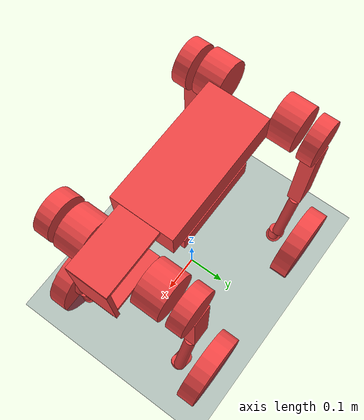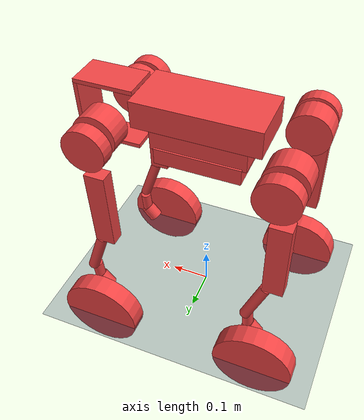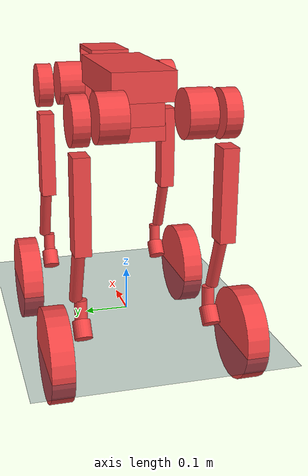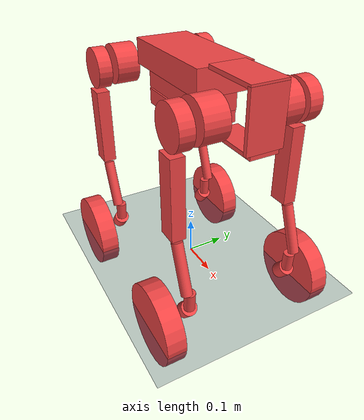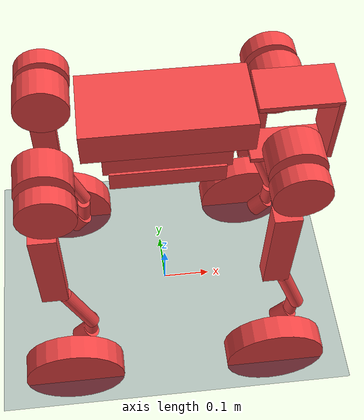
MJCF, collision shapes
<mujoco model="black scene">
  <include file="blackW_description.xml"/>

  <statistic center="0 0 0.1" extent="0.8"/>

  <visual>
    <headlight diffuse="0.6 0.6 0.6" ambient="0.3 0.3 0.3" specular="0 0 0"/>
    <rgba haze="0.15 0.25 0.35 1"/>
    <global azimuth="120" elevation="-20"/>
  </visual>

  <asset>
    <texture type="skybox" builtin="gradient" rgb1="0.3 0.5 0.7" rgb2="0 0 0" width="512" height="3072"/>
    <texture type="2d" name="groundplane" builtin="checker" mark="edge" rgb1="0.2 0.3 0.4" rgb2="0.1 0.2 0.3"
      markrgb="0.8 0.8 0.8" width="300" height="300"/>
    <material name="groundplane" texture="groundplane" texuniform="true" texrepeat="5 5" reflectance="0.2"/>
  </asset>

  <worldbody>
    <light pos="0 0 1.5" dir="0 0 -1" directional="true"/>
    <geom name="floor" size="0 0 0.05" type="plane" material="groundplane"/>
  </worldbody>
</mujoco>

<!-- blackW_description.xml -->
<mujoco model="blackW">
  <compiler angle="radian" meshdir="assets" />
  <option timestep="0.002" gravity="0 0 -9.81" cone="elliptic" impratio="100" />

  <default>
    <joint damping="0.1" armature="0.01" frictionloss="0.2" />
  </default>
  <asset>
    <mesh name="trunk" file="trunk.STL" />
    <mesh name="d435" file="d435.stl" />
    <mesh name="FL_hip" file="FL_hip.STL" />
    <mesh name="FL_thigh" file="FL_thigh.STL" />
    <mesh name="FL_calf" file="FL_calf.STL" />
    <mesh name="FL_foot" file="FL_foot.STL" />
    <mesh name="FR_hip" file="FR_hip.STL" />
    <mesh name="FR_thigh" file="FR_thigh.STL" />
    <mesh name="FR_calf" file="FR_calf.STL" />
    <mesh name="FR_foot" file="FR_foot.STL" />
    <mesh name="RR_hip" file="RR_hip.STL" />
    <mesh name="RR_thigh" file="RR_thigh.STL" />
    <mesh name="RR_calf" file="RR_calf.STL" />
    <mesh name="RR_foot" file="RR_foot.STL" />
    <mesh name="RL_hip" file="RL_hip.STL" />
    <mesh name="RL_thigh" file="RL_thigh.STL" />
    <mesh name="RL_calf" file="RL_calf.STL" />
    <mesh name="RL_foot" file="RL_foot.STL" />
    <material name="trunk_mat" rgba="0.749 0.749 0.749 1" specular="0" />
    <material name="imu_link_mat" rgba="0.8 0 0 1" specular="0" />
    <material name="d435_link_mat" rgba="0.149 0.149 0.149 1" specular="0" />
    <material name="FL_hip_mat" rgba="0.749 0.749 0.749 1" specular="0" />
    <material name="FL_thigh_mat" rgba="0.749 0.749 0.749 1" specular="0" />
    <material name="FL_calf_mat" rgba="0.749 0.749 0.749 1" specular="0" />
    <material name="FL_foot_mat" rgba="0.8667 0.9059 1 1" specular="0" />
    <material name="FR_hip_mat" rgba="0.749 0.749 0.749 1" specular="0" />
    <material name="FR_thigh_mat" rgba="0.749 0.749 0.749 1" specular="0" />
    <material name="FR_calf_mat" rgba="0.749 0.749 0.749 1" specular="0" />
    <material name="FR_foot_mat" rgba="0.8667 0.9059 1 1" specular="0" />
    <material name="RR_hip_mat" rgba="0.749 0.749 0.749 1" specular="0" />
    <material name="RR_thigh_mat" rgba="0.749 0.749 0.749 1" specular="0" />
    <material name="RR_calf_mat" rgba="0.749 0.749 0.749 1" specular="0" />
    <material name="RR_foot_mat" rgba="0.8667 0.9059 1 1" specular="0" />
    <material name="RL_hip_mat" rgba="0.749 0.749 0.749 1" specular="0" />
    <material name="RL_thigh_mat" rgba="0.749 0.749 0.749 1" specular="0" />
    <material name="RL_calf_mat" rgba="0.749 0.749 0.749 1" specular="0" />
    <material name="RL_foot_mat" rgba="0.8667 0.9059 1 1" specular="0" />
  </asset>

  <contact>
    <exclude body1="trunk" body2="FR_thigh" />
    <exclude body1="trunk" body2="FL_thigh" />
    <exclude body1="trunk" body2="RR_thigh" />
    <exclude body1="trunk" body2="RL_thigh" />
    <exclude body1="trunk" body2="FR_hip" />
    <exclude body1="trunk" body2="FL_hip" />
    <exclude body1="trunk" body2="RR_hip" />
    <exclude body1="trunk" body2="RL_hip" />
    <exclude body1="FR_foot" body2="FR_thigh" />
    <exclude body1="FL_foot" body2="FL_thigh" />
    <exclude body1="RR_foot" body2="RR_thigh" />
    <exclude body1="RL_foot" body2="RL_thigh" />
    <exclude body1="FR_foot" body2="FR_calf" />
    <exclude body1="FL_foot" body2="FL_calf" />
    <exclude body1="RR_foot" body2="RR_calf" />
    <exclude body1="RL_foot" body2="RL_calf" />
  </contact>

  <worldbody>
    <body name="trunk" pos="0 0 0.58">
      <freejoint/>
      <inertial pos="-0.012143 -0.0000494 -0.0734402" mass="5.7659525" fullinertia="0.0093888 0.0077112 0.012879 -0.0000026 0.0000017 -0.0000276"/>
      <geom pos="0 0 0" group="1" contype="0" conaffinity="0" material="trunk_mat" type="mesh" mesh="trunk" />
      <geom pos="0 0 -0.02" rgba="0.9373 0.2667 0.2667 1" group="3" contype="1" conaffinity="1" type="box" size="0.15 0.07 0.0325" />
      <geom pos="0 0 -0.08" rgba="0.9373 0.2667 0.2667 1" group="3" contype="1" conaffinity="1" type="box" size="0.115 0.055 0.03" />
      <geom pos="0 0 -0.125" rgba="0.9373 0.2667 0.2667 1" group="3" contype="1" conaffinity="1" type="box" size="0.105 0.06 0.02" />
      <geom pos="0.225 0 -0.13" rgba="0.9373 0.2667 0.2667 1" group="3" contype="1" conaffinity="1" type="box" size="0.0725 0.035 0.005" />
      <geom pos="0.225 0 0.015" rgba="0.9373 0.2667 0.2667 1" group="3" contype="1" conaffinity="1" type="box" size="0.0725 0.045 0.005" />
      <geom pos="0.293 0 -0.055" rgba="0.9373 0.2667 0.2667 1" group="3" contype="1" conaffinity="1" type="box" size="0.005 0.045 0.07" />
      <body name="imu_link" pos="0 0 0">
        <inertial pos="0 0 0" mass="0.001" diaginertia="0.0001 0.0001 0.0001"/>
        <geom pos="0 0 0" group="1" contype="0" conaffinity="0" material="imu_link_mat" type="box" size="0.0005 0.0005 0.0005" />
        <site name="imu" pos="0 0 0" quat="1 0 0 0" />
      </body>
      <body name="d435_link" pos="0.225 0 0.028">
        <inertial pos="0 0 -0.0125" mass="0.072" diaginertia="0.00002 0.00006 0.00006"/>
        <geom pos="0.07 0 -0.08" quat="0.3155095 0.6328142 0.6328142 0.3155095" group="1" contype="0" conaffinity="0" material="d435_link_mat" type="mesh" mesh="d435" />
      </body>
      <body name="FL_hip" pos="0.1566 0.060001 -0.06425">
        <joint name="FL_hip_joint" type="hinge" axis="1 0 0" limited="true" range="-0.5 0.5"/>
        <inertial pos="0.0513796 0.0147843 0.0000566" mass="0.6055878" fullinertia="0.0003742 0.0006493 0.0003415 -0.0000088 0.000001 -0.0000001"/>
        <geom pos="0 0 0" group="1" contype="0" conaffinity="0" material="FL_hip_mat" type="mesh" mesh="FL_hip" />
        <geom pos="0.058 0.03 0" quat="0.7071068 0.7071068 0 0" rgba="0.9373 0.2667 0.2667 1" group="3" contype="1" conaffinity="1" type="cylinder" size="0.052 0.03" />
        <body name="FL_thigh" pos="0.056 0.0336 0" quat="0.7071055 0 0 0.7071081">
          <joint name="FL_thigh_joint" type="hinge" axis="1 0 0" limited="true" range="-1.4 3"/>
          <inertial pos="0.0414485 0.004453 -0.0219464" mass="0.9116849" fullinertia="0.0018577 0.0013983 0.0005179 0 -0.0000002 0.0000051"/>
          <geom pos="0 0 0" group="1" contype="0" conaffinity="0" material="FL_thigh_mat" type="mesh" mesh="FL_thigh" />
          <geom pos="0.06 0.015 -0.17" rgba="0.9373 0.2667 0.2667 1" group="3" contype="1" conaffinity="1" type="box" size="0.0175 0.025 0.1025" />
          <geom pos="0.06 0 -0.003" quat="0.7071068 0 0.7071068 0" rgba="0.9373 0.2667 0.2667 1" group="3" contype="1" conaffinity="1" type="cylinder" size="0.052 0.0175" />
          <body name="FL_calf" pos="0.0618 0 -0.25">
            <joint name="FL_calf_joint" type="hinge" axis="1 0 0" limited="true" range="-2.5 -0.85"/>
            <inertial pos="0.0040653 -0.0170671 -0.1908967" mass="0.6311814" fullinertia="0.0017739 0.0014952 0.000293 -0.0000007 0.0000012 -0.0000722"/>
            <geom pos="0 0 0" group="1" contype="0" conaffinity="0" material="FL_calf_mat" type="mesh" mesh="FL_calf" />
            <geom pos="0 -0.025 -0.09" quat="0.9843036 -0.1764835 0 0" rgba="0.9373 0.2667 0.2667 1" group="3" contype="1" conaffinity="1" type="cylinder" size="0.014 0.065" />
            <geom pos="-0.01 -0.042 -0.178" quat="0.9993847 0.0350739 0 0" rgba="0.9373 0.2667 0.2667 1" group="3" contype="1" conaffinity="1" type="cylinder" size="0.014 0.025" />
            <geom pos="-0.01 -0.028 -0.218" quat="0.9396926 0.3420201 0 0" rgba="0.9373 0.2667 0.2667 1" group="3" contype="1" conaffinity="1" type="cylinder" size="0.02 0.02" />
            <body name="FL_foot" pos="0.02635 0 -0.25253" quat="-0.0000037 1 0 0">
              <joint name="FL_wheel_joint" type="hinge" axis="1 0 0" limited="false"/>
              <inertial pos="0.0291381 0.0000012 -0.0000002" mass="1.4862602" diaginertia="0.0069491 0.0036386 0.0036388"/>
              <geom pos="0 0 0" group="1" contype="0" conaffinity="0" material="FL_foot_mat" type="mesh" mesh="FL_foot" />
              <geom pos="0.028 0 0" quat="0.7071068 0 0.7071068 0" rgba="0.9373 0.2667 0.2667 1" group="3" contype="1" conaffinity="1" type="cylinder" size="0.103 0.0245" />
            </body>
          </body>
        </body>
      </body>
      <body name="FR_hip" pos="0.1566 -0.059999 -0.06425">
        <joint name="FR_hip_joint" type="hinge" axis="1 0 0" limited="true" range="-0.5 0.5"/>
        <inertial pos="0.0513796 -0.0147843 -0.0000566" mass="0.6055878" fullinertia="0.0003742 0.0006493 0.0003415 0.0000088 -0.000001 -0.0000001"/>
        <geom pos="0 0 0" group="1" contype="0" conaffinity="0" material="FR_hip_mat" type="mesh" mesh="FR_hip" />
        <geom pos="0.058 -0.03 0" quat="0.7071068 0.7071068 0 0" rgba="0.9373 0.2667 0.2667 1" group="3" contype="1" conaffinity="1" type="cylinder" size="0.052 0.03" />
        <body name="FR_thigh" pos="0.056 -0.0336 0" quat="0.7071055 0 0 -0.7071081">
          <joint name="FR_thigh_joint" type="hinge" axis="1 0 0" limited="true" range="-3 1.4"/>
          <inertial pos="0.0415203 -0.0043781 -0.0220242" mass="0.9149128" fullinertia="0.0018577 0.0013991 0.0005172 -0.0000001 -0.0000002 -0.0000031"/>
          <geom pos="0 0 0" group="1" contype="0" conaffinity="0" material="FR_thigh_mat" type="mesh" mesh="FR_thigh" />
          <geom pos="0.06 -0.015 -0.17" rgba="0.9373 0.2667 0.2667 1" group="3" contype="1" conaffinity="1" type="box" size="0.0175 0.025 0.1025" />
          <geom pos="0.06 0 -0.003" quat="0.7071068 0 0.7071068 0" rgba="0.9373 0.2667 0.2667 1" group="3" contype="1" conaffinity="1" type="cylinder" size="0.052 0.0175" />
          <body name="FR_calf" pos="0.0618 0 -0.25">
            <joint name="FR_calf_joint" type="hinge" axis="1 0 0" limited="true" range="0.85 2.5"/>
            <inertial pos="0.0040653 0.0170625 -0.1908923" mass="0.6311813" fullinertia="0.0017739 0.0014951 0.000293 0.0000007 0.0000011 0.0000722"/>
            <geom pos="0 0 0" group="1" contype="0" conaffinity="0" material="FR_calf_mat" type="mesh" mesh="FR_calf" />
            <geom pos="0 0.025 -0.09" quat="0.9843036 0.1764835 0 0" rgba="0.9373 0.2667 0.2667 1" group="3" contype="1" conaffinity="1" type="cylinder" size="0.014 0.065" />
            <geom pos="-0.01 0.042 -0.178" quat="0.9993847 -0.0350739 0 0" rgba="0.9373 0.2667 0.2667 1" group="3" contype="1" conaffinity="1" type="cylinder" size="0.014 0.025" />
            <geom pos="-0.01 0.028 -0.218" quat="0.9396926 -0.3420201 0 0" rgba="0.9373 0.2667 0.2667 1" group="3" contype="1" conaffinity="1" type="cylinder" size="0.02 0.02" />
            <body name="FR_foot" pos="0.02635 0 -0.25253">
              <joint name="FR_wheel_joint" type="hinge" axis="1 0 0" limited="false"/>
              <inertial pos="0.0291381 -0.0000001 -0.0000012" mass="1.4862603" diaginertia="0.0069491 0.0036388 0.0036386"/>
              <geom pos="0 0 0" group="1" contype="0" conaffinity="0" material="FR_foot_mat" type="mesh" mesh="FR_foot" />
              <geom pos="0.028 0 0" quat="0.7071068 0 0.7071068 0" rgba="0.9373 0.2667 0.2667 1" group="3" contype="1" conaffinity="1" type="cylinder" size="0.103 0.0245" />
            </body>
          </body>
        </body>
      </body>
      <body name="RR_hip" pos="-0.1566 -0.059999 -0.06425" quat="-0.0000037 0 0 -1">
        <joint name="RR_hip_joint" type="hinge" axis="1 0 0" limited="true" range="-0.5 0.5"/>
        <inertial pos="0.0513796 0.0147843 0.0000566" mass="0.6055878" fullinertia="0.0003742 0.0006493 0.0003415 -0.0000088 0.000001 -0.0000001"/>
        <geom pos="0 0 0" group="1" contype="0" conaffinity="0" material="RR_hip_mat" type="mesh" mesh="RR_hip" />
        <geom pos="0.058 0.03 0" quat="0.7071068 0.7071068 0 0" rgba="0.9373 0.2667 0.2667 1" group="3" contype="1" conaffinity="1" type="cylinder" size="0.052 0.03" />
        <body name="RR_thigh" pos="0.056 0.0336 0" quat="0.7071055 0 0 0.7071081">
          <joint name="RR_thigh_joint" type="hinge" axis="1 0 0" limited="true" range="-3 1.4"/>
          <inertial pos="0.0415203 -0.0043781 -0.0220242" mass="0.9149128" fullinertia="0.0018577 0.0013991 0.0005172 -0.0000001 -0.0000002 -0.0000031"/>
          <geom pos="0 0 0" group="1" contype="0" conaffinity="0" material="RR_thigh_mat" type="mesh" mesh="RR_thigh" />
          <geom pos="0.06 -0.015 -0.17" rgba="0.9373 0.2667 0.2667 1" group="3" contype="1" conaffinity="1" type="box" size="0.0175 0.025 0.1025" />
          <geom pos="0.06 0 -0.003" quat="0.7071068 0 0.7071068 0" rgba="0.9373 0.2667 0.2667 1" group="3" contype="1" conaffinity="1" type="cylinder" size="0.052 0.0175" />
          <body name="RR_calf" pos="0.0618 0 -0.25">
            <joint name="RR_calf_joint" type="hinge" axis="1 0 0" limited="true" range="0.85 2.5"/>
            <inertial pos="0.0040653 0.0170625 -0.1908923" mass="0.6311815" fullinertia="0.0017739 0.0014951 0.000293 0.0000007 0.0000011 0.0000722"/>
            <geom pos="0 0 0" group="1" contype="0" conaffinity="0" material="RR_calf_mat" type="mesh" mesh="RR_calf" />
            <geom pos="0 0.025 -0.09" quat="0.9843036 0.1764835 0 0" rgba="0.9373 0.2667 0.2667 1" group="3" contype="1" conaffinity="1" type="cylinder" size="0.014 0.065" />
            <geom pos="-0.01 0.042 -0.178" quat="0.9993847 -0.0350739 0 0" rgba="0.9373 0.2667 0.2667 1" group="3" contype="1" conaffinity="1" type="cylinder" size="0.014 0.025" />
            <geom pos="-0.01 0.028 -0.218" quat="0.9396926 -0.3420201 0 0" rgba="0.9373 0.2667 0.2667 1" group="3" contype="1" conaffinity="1" type="cylinder" size="0.02 0.02" />
            <body name="RR_foot" pos="0.02635 0 -0.25253">
              <joint name="RR_wheel_joint" type="hinge" axis="1 0 0" limited="false"/>
              <inertial pos="0.0291381 0.0000011 0.0000005" mass="1.4862602" fullinertia="0.0069491 0.0036387 0.0036387 0 0 -0.0000001"/>
              <geom pos="0 0 0" group="1" contype="0" conaffinity="0" material="RR_foot_mat" type="mesh" mesh="RR_foot" />
              <geom pos="0.028 0 0" quat="0.7071068 0 0.7071068 0" rgba="0.9373 0.2667 0.2667 1" group="3" contype="1" conaffinity="1" type="cylinder" size="0.103 0.0245" />
            </body>
          </body>
        </body>
      </body>
      <body name="RL_hip" pos="-0.1566 0.060001 -0.06425" quat="-0.0000037 0 0 -1">
        <joint name="RL_hip_joint" type="hinge" axis="1 0 0" limited="true" range="-0.5 0.5"/>
        <inertial pos="0.0513796 -0.0147843 -0.0000566" mass="0.6055878" fullinertia="0.0003742 0.0006493 0.0003415 0.0000088 -0.000001 -0.0000001"/>
        <geom pos="0 0 0" group="1" contype="0" conaffinity="0" material="RL_hip_mat" type="mesh" mesh="RL_hip" />
        <geom pos="0.058 -0.03 0" quat="0.7071068 0.7071068 0 0" rgba="0.9373 0.2667 0.2667 1" group="3" contype="1" conaffinity="1" type="cylinder" size="0.052 0.03" />
        <body name="RL_thigh" pos="0.056 -0.0336 0" quat="0.7071055 0 0 -0.7071081">
          <joint name="RL_thigh_joint" type="hinge" axis="1 0 0" limited="true" range="-1.4 3"/>
          <inertial pos="0.0414485 0.0044527 -0.0219466" mass="0.9116849" fullinertia="0.0018577 0.0013983 0.0005179 0 -0.0000002 0.0000051"/>
          <geom pos="0 0 0" group="1" contype="0" conaffinity="0" material="RL_thigh_mat" type="mesh" mesh="RL_thigh" />
          <geom pos="0.06 0.015 -0.17" rgba="0.9373 0.2667 0.2667 1" group="3" contype="1" conaffinity="1" type="box" size="0.0175 0.025 0.1025" />
          <geom pos="0.06 0 -0.003" quat="0.7071068 0 0.7071068 0" rgba="0.9373 0.2667 0.2667 1" group="3" contype="1" conaffinity="1" type="cylinder" size="0.052 0.0175" />
          <body name="RL_calf" pos="0.0618 0 -0.25">
            <joint name="RL_calf_joint" type="hinge" axis="1 0 0" limited="true" range="-2.5 -0.85"/>
            <inertial pos="0.0040653 -0.0170671 -0.1908967" mass="0.6311814" fullinertia="0.0017739 0.0014952 0.000293 -0.0000007 0.0000012 -0.0000722"/>
            <geom pos="0 0 0" group="1" contype="0" conaffinity="0" material="RL_calf_mat" type="mesh" mesh="RL_calf" />
            <geom pos="0 -0.025 -0.09" quat="0.9843036 -0.1764835 0 0" rgba="0.9373 0.2667 0.2667 1" group="3" contype="1" conaffinity="1" type="cylinder" size="0.014 0.065" />
            <geom pos="-0.01 -0.042 -0.178" quat="0.9993847 0.0350739 0 0" rgba="0.9373 0.2667 0.2667 1" group="3" contype="1" conaffinity="1" type="cylinder" size="0.014 0.025" />
            <geom pos="-0.01 -0.028 -0.218" quat="0.9396926 0.3420201 0 0" rgba="0.9373 0.2667 0.2667 1" group="3" contype="1" conaffinity="1" type="cylinder" size="0.02 0.02" />
            <body name="RL_foot" pos="0.02635 0 -0.25253" quat="-0.0000037 1 0 0">
              <joint name="RL_wheel_joint" type="hinge" axis="1 0 0" limited="false"/>
              <inertial pos="0.0291381 0.0000012 -0.0000002" mass="1.4862602" diaginertia="0.0069491 0.0036386 0.0036388"/>
              <geom pos="0 0 0" group="1" contype="0" conaffinity="0" material="RL_foot_mat" type="mesh" mesh="RL_foot" />
              <geom pos="0.028 0 0" quat="0.7071068 0 0.7071068 0" rgba="0.9373 0.2667 0.2667 1" group="3" contype="1" conaffinity="1" type="cylinder" size="0.103 0.0245" />
            </body>
          </body>
        </body>
      </body>
    </body>
  </worldbody>
  <actuator>
    <motor joint="FL_hip_joint" gear="1" ctrlrange="-23.7 23.7" />
    <motor joint="FL_thigh_joint" gear="1" ctrlrange="-23.7 23.7" />
    <motor joint="FL_calf_joint" gear="1" ctrlrange="-59.25 59.25" />
    <motor joint="FL_wheel_joint" gear="1" ctrlrange="-20 20" />
    <motor joint="FR_hip_joint" gear="1" ctrlrange="-23.7 23.7" />
    <motor joint="FR_thigh_joint" gear="1" ctrlrange="-23.7 23.7" />
    <motor joint="FR_calf_joint" gear="1" ctrlrange="-59.25 59.25" />
    <motor joint="FR_wheel_joint" gear="1" ctrlrange="-20 20" />
    <motor joint="RR_hip_joint" gear="1" ctrlrange="-23.7 23.7" />
    <motor joint="RR_thigh_joint" gear="1" ctrlrange="-23.7 23.7" />
    <motor joint="RR_calf_joint" gear="1" ctrlrange="-59.25 59.25" />
    <motor joint="RR_wheel_joint" gear="1" ctrlrange="-20 20" />
    <motor joint="RL_hip_joint" gear="1" ctrlrange="-23.7 23.7" />
    <motor joint="RL_thigh_joint" gear="1" ctrlrange="-23.7 23.7" />
    <motor joint="RL_calf_joint" gear="1" ctrlrange="-59.25 59.25" />
    <motor joint="RL_wheel_joint" gear="1" ctrlrange="-20 20" />
  </actuator>

  <sensor>
    <framequat name="imu_quat" objtype="site" objname="imu" />
    <gyro name="imu_gyro" site="imu" />
    <accelerometer name="imu_acc" site="imu" />
  </sensor>

  <keyframe>
    <key name="default_pose"
         qpos="0 0 0.58 1 0 0 0
               0 0.8014 -1.527 0
               0 -0.8014 1.527 0
               0 -0.8014 1.527 0
               0 0.8014 -1.527 0"
         ctrl="0 0 0 0 0 0 0 0 0 0 0 0 0 0 0 0" />
  </keyframe>
</mujoco>
